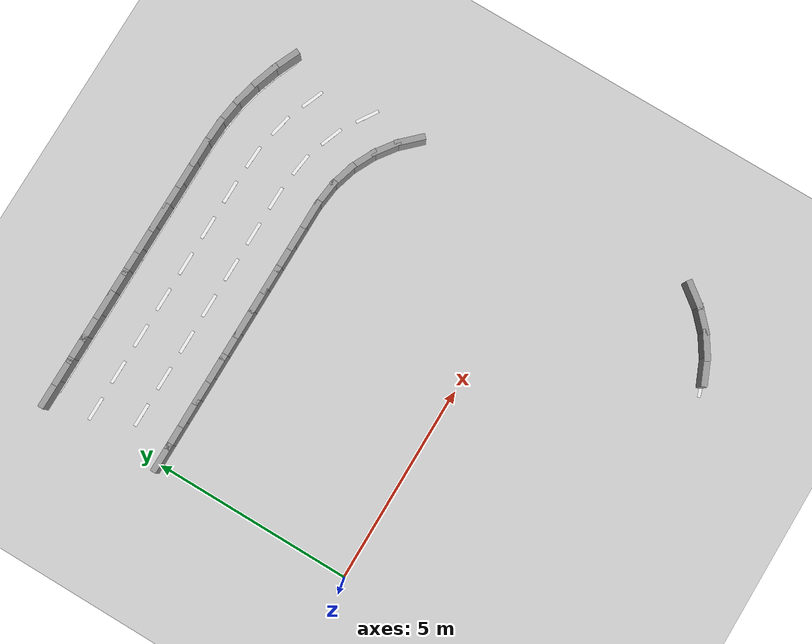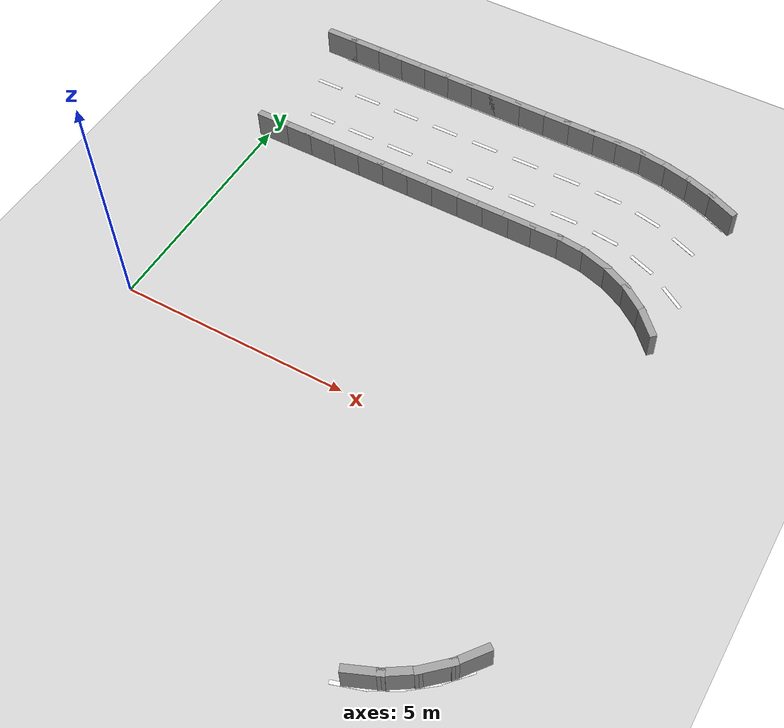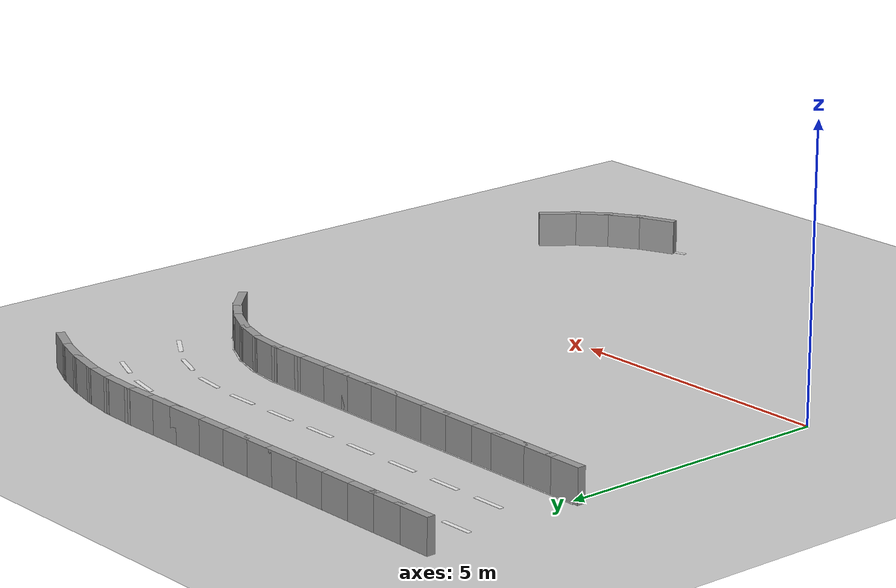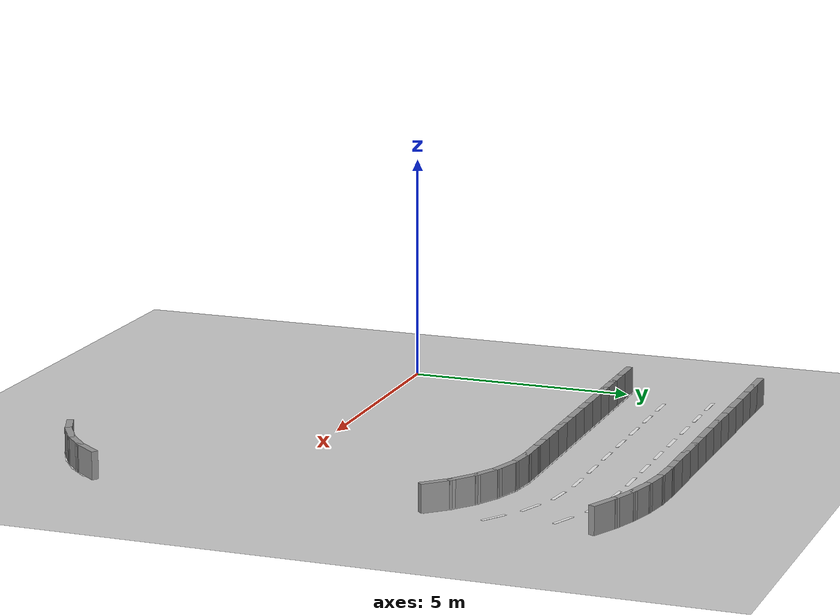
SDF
<sdf version="1.7">
 <world name="default">
  <model name="ground_plane">
   <static>1</static>
   <link name="link">
    <collision name="collision">
     <geometry><plane><normal>0 0 1</normal><size>100 100</size></plane></geometry>
     <surface><friction><ode><mu>100</mu><mu2>50</mu2></ode></friction></surface>
    </collision>
    <visual name="visual">
     <cast_shadows>0</cast_shadows>
     <geometry><plane><normal>0 0 1</normal><size>100 100</size></plane></geometry>
     <material>
      <script><uri>file://media/materials/scripts/gazebo.material</uri><name>Gazebo/Grey</name></script>
     </material>
    </visual>
   </link>
  </model>
  <model name="superspeedway">
   <link name="Wall_4">
    <collision name="Wall_4_Collision">
     <geometry><box><size>0.7493 0.1500 0.6000</size></box></geometry>
     <pose>0 0 0.3000 0 -0 0</pose>
    </collision>
    <visual name="Wall_4_Visual">
     <pose>0 0 0.3000 0 -0 0</pose>
     <geometry><box><size>0.7493 0.1500 0.6000</size></box></geometry>
     <material>
      <script><uri>file://media/materials/scripts/gazebo.material</uri><name>Gazebo/Grey</name></script>
      <ambient>1 1 1 1</ambient>
     </material>
    </visual>
    <pose>9.5000 3.9311 0 0 -0 2.34222</pose>
   </link>
   <link name="Wall_5">
    <collision name="Wall_5_Collision">
     <geometry><box><size>0.7493 0.1500 0.6000</size></box></geometry>
     <pose>0 0 0.3000 0 -0 0</pose>
    </collision>
    <visual name="Wall_5_Visual">
     <pose>0 0 0.3000 0 -0 0</pose>
     <geometry><box><size>0.7493 0.1500 0.6000</size></box></geometry>
     <material>
      <script><uri>file://media/materials/scripts/gazebo.material</uri><name>Gazebo/Grey</name></script>
      <ambient>1 1 1 1</ambient>
     </material>
    </visual>
    <pose>9.0486 4.3219 0 0 -0 2.51365</pose>
   </link>
   <link name="Wall_6">
    <collision name="Wall_6_Collision">
     <geometry><box><size>0.7493 0.1500 0.6000</size></box></geometry>
     <pose>0 0 0.3000 0 -0 0</pose>
    </collision>
    <visual name="Wall_6_Visual">
     <pose>0 0 0.3000 0 -0 0</pose>
     <geometry><box><size>0.7493 0.1500 0.6000</size></box></geometry>
     <material>
      <script><uri>file://media/materials/scripts/gazebo.material</uri><name>Gazebo/Grey</name></script>
      <ambient>1 1 1 1</ambient>
     </material>
    </visual>
    <pose>8.5372 4.6300 0 0 -0 2.68508</pose>
   </link>
   <link name="Wall_7">
    <collision name="Wall_7_Collision">
     <geometry><box><size>0.7493 0.1500 0.6000</size></box></geometry>
     <pose>0 0 0.3000 0 -0 0</pose>
    </collision>
    <visual name="Wall_7_Visual">
     <pose>0 0 0.3000 0 -0 0</pose>
     <geometry><box><size>0.7493 0.1500 0.6000</size></box></geometry>
     <material>
      <script><uri>file://media/materials/scripts/gazebo.material</uri><name>Gazebo/Grey</name></script>
      <ambient>1 1 1 1</ambient>
     </material>
    </visual>
    <pose>7.9807 4.8464 0 0 -0 2.85650</pose>
   </link>
   <link name="Wall_8">
    <collision name="Wall_8_Collision">
     <geometry><box><size>0.7493 0.1500 0.6000</size></box></geometry>
     <pose>0 0 0.3000 0 -0 0</pose>
    </collision>
    <visual name="Wall_8_Visual">
     <pose>0 0 0.3000 0 -0 0</pose>
     <geometry><box><size>0.7493 0.1500 0.6000</size></box></geometry>
     <material>
      <script><uri>file://media/materials/scripts/gazebo.material</uri><name>Gazebo/Grey</name></script>
      <ambient>1 1 1 1</ambient>
     </material>
    </visual>
    <pose>7.3955 4.9646 0 0 -0 3.02793</pose>
   </link>
   <link name="Wall_9">
    <collision name="Wall_9_Collision">
     <geometry><box><size>0.7500 0.1500 0.6000</size></box></geometry>
     <pose>0 0 0.3000 0 -0 0</pose>
    </collision>
    <visual name="Wall_9_Visual">
     <pose>0 0 0.3000 0 -0 0</pose>
     <geometry><box><size>0.7500 0.1500 0.6000</size></box></geometry>
     <material>
      <script><uri>file://media/materials/scripts/gazebo.material</uri><name>Gazebo/Grey</name></script>
      <ambient>1 1 1 1</ambient>
     </material>
    </visual>
    <pose>6.7978 4.9993 0 0 -0 3.13931</pose>
   </link>
   <link name="Wall_10">
    <collision name="Wall_10_Collision">
     <geometry><box><size>0.7500 0.1500 0.6000</size></box></geometry>
     <pose>0 0 0.3000 0 -0 0</pose>
    </collision>
    <visual name="Wall_10_Visual">
     <pose>0 0 0.3000 0 -0 0</pose>
     <geometry><box><size>0.7500 0.1500 0.6000</size></box></geometry>
     <material>
      <script><uri>file://media/materials/scripts/gazebo.material</uri><name>Gazebo/Grey</name></script>
      <ambient>1 1 1 1</ambient>
     </material>
    </visual>
    <pose>6.1978 5.0000 0 0 -0 3.14159</pose>
   </link>
   <link name="Wall_11">
    <collision name="Wall_11_Collision">
     <geometry><box><size>0.7500 0.1500 0.6000</size></box></geometry>
     <pose>0 0 0.3000 0 -0 0</pose>
    </collision>
    <visual name="Wall_11_Visual">
     <pose>0 0 0.3000 0 -0 0</pose>
     <geometry><box><size>0.7500 0.1500 0.6000</size></box></geometry>
     <material>
      <script><uri>file://media/materials/scripts/gazebo.material</uri><name>Gazebo/Grey</name></script>
      <ambient>1 1 1 1</ambient>
     </material>
    </visual>
    <pose>5.5978 5.0000 0 0 -0 3.14159</pose>
   </link>
   <link name="Wall_12">
    <collision name="Wall_12_Collision">
     <geometry><box><size>0.7500 0.1500 0.6000</size></box></geometry>
     <pose>0 0 0.3000 0 -0 0</pose>
    </collision>
    <visual name="Wall_12_Visual">
     <pose>0 0 0.3000 0 -0 0</pose>
     <geometry><box><size>0.7500 0.1500 0.6000</size></box></geometry>
     <material>
      <script><uri>file://media/materials/scripts/gazebo.material</uri><name>Gazebo/Grey</name></script>
      <ambient>1 1 1 1</ambient>
     </material>
    </visual>
    <pose>4.9978 5.0000 0 0 -0 3.14159</pose>
   </link>
   <link name="Wall_13">
    <collision name="Wall_13_Collision">
     <geometry><box><size>0.7500 0.1500 0.6000</size></box></geometry>
     <pose>0 0 0.3000 0 -0 0</pose>
    </collision>
    <visual name="Wall_13_Visual">
     <pose>0 0 0.3000 0 -0 0</pose>
     <geometry><box><size>0.7500 0.1500 0.6000</size></box></geometry>
     <material>
      <script><uri>file://media/materials/scripts/gazebo.material</uri><name>Gazebo/Grey</name></script>
      <ambient>1 1 1 1</ambient>
     </material>
    </visual>
    <pose>4.3978 5.0000 0 0 -0 3.14159</pose>
   </link>
   <link name="Wall_14">
    <collision name="Wall_14_Collision">
     <geometry><box><size>0.7500 0.1500 0.6000</size></box></geometry>
     <pose>0 0 0.3000 0 -0 0</pose>
    </collision>
    <visual name="Wall_14_Visual">
     <pose>0 0 0.3000 0 -0 0</pose>
     <geometry><box><size>0.7500 0.1500 0.6000</size></box></geometry>
     <material>
      <script><uri>file://media/materials/scripts/gazebo.material</uri><name>Gazebo/Grey</name></script>
      <ambient>1 1 1 1</ambient>
     </material>
    </visual>
    <pose>3.7978 5.0000 0 0 -0 3.14159</pose>
   </link>
   <link name="Wall_15">
    <collision name="Wall_15_Collision">
     <geometry><box><size>0.7500 0.1500 0.6000</size></box></geometry>
     <pose>0 0 0.3000 0 -0 0</pose>
    </collision>
    <visual name="Wall_15_Visual">
     <pose>0 0 0.3000 0 -0 0</pose>
     <geometry><box><size>0.7500 0.1500 0.6000</size></box></geometry>
     <material>
      <script><uri>file://media/materials/scripts/gazebo.material</uri><name>Gazebo/Grey</name></script>
      <ambient>1 1 1 1</ambient>
     </material>
    </visual>
    <pose>3.1978 5.0000 0 0 -0 3.14159</pose>
   </link>
   <link name="Wall_16">
    <collision name="Wall_16_Collision">
     <geometry><box><size>0.7500 0.1500 0.6000</size></box></geometry>
     <pose>0 0 0.3000 0 -0 0</pose>
    </collision>
    <visual name="Wall_16_Visual">
     <pose>0 0 0.3000 0 -0 0</pose>
     <geometry><box><size>0.7500 0.1500 0.6000</size></box></geometry>
     <material>
      <script><uri>file://media/materials/scripts/gazebo.material</uri><name>Gazebo/Grey</name></script>
      <ambient>1 1 1 1</ambient>
     </material>
    </visual>
    <pose>2.5978 5.0000 0 0 -0 3.14159</pose>
   </link>
   <link name="Wall_17">
    <collision name="Wall_17_Collision">
     <geometry><box><size>0.7500 0.1500 0.6000</size></box></geometry>
     <pose>0 0 0.3000 0 -0 0</pose>
    </collision>
    <visual name="Wall_17_Visual">
     <pose>0 0 0.3000 0 -0 0</pose>
     <geometry><box><size>0.7500 0.1500 0.6000</size></box></geometry>
     <material>
      <script><uri>file://media/materials/scripts/gazebo.material</uri><name>Gazebo/Grey</name></script>
      <ambient>1 1 1 1</ambient>
     </material>
    </visual>
    <pose>1.9978 5.0000 0 0 -0 3.14159</pose>
   </link>
   <link name="Wall_18">
    <collision name="Wall_18_Collision">
     <geometry><box><size>0.7500 0.1500 0.6000</size></box></geometry>
     <pose>0 0 0.3000 0 -0 0</pose>
    </collision>
    <visual name="Wall_18_Visual">
     <pose>0 0 0.3000 0 -0 0</pose>
     <geometry><box><size>0.7500 0.1500 0.6000</size></box></geometry>
     <material>
      <script><uri>file://media/materials/scripts/gazebo.material</uri><name>Gazebo/Grey</name></script>
      <ambient>1 1 1 1</ambient>
     </material>
    </visual>
    <pose>1.3978 5.0000 0 0 -0 3.14159</pose>
   </link>
   <link name="Wall_19">
    <collision name="Wall_19_Collision">
     <geometry><box><size>0.7500 0.1500 0.6000</size></box></geometry>
     <pose>0 0 0.3000 0 -0 0</pose>
    </collision>
    <visual name="Wall_19_Visual">
     <pose>0 0 0.3000 0 -0 0</pose>
     <geometry><box><size>0.7500 0.1500 0.6000</size></box></geometry>
     <material>
      <script><uri>file://media/materials/scripts/gazebo.material</uri><name>Gazebo/Grey</name></script>
      <ambient>1 1 1 1</ambient>
     </material>
    </visual>
    <pose>0.7978 5.0000 0 0 -0 3.14159</pose>
   </link>
   <link name="Wall_20">
    <collision name="Wall_20_Collision">
     <geometry><box><size>0.7500 0.1500 0.6000</size></box></geometry>
     <pose>0 0 0.3000 0 -0 0</pose>
    </collision>
    <visual name="Wall_20_Visual">
     <pose>0 0 0.3000 0 -0 0</pose>
     <geometry><box><size>0.7500 0.1500 0.6000</size></box></geometry>
     <material>
      <script><uri>file://media/materials/scripts/gazebo.material</uri><name>Gazebo/Grey</name></script>
      <ambient>1 1 1 1</ambient>
     </material>
    </visual>
    <pose>0.1978 5.0000 0 0 -0 3.14159</pose>
   </link>
   <link name="Wall_81">
    <collision name="Wall_81_Collision">
     <geometry><box><size>0.7493 0.1500 0.6000</size></box></geometry>
     <pose>0 0 0.3000 0 -0 0</pose>
    </collision>
    <visual name="Wall_81_Visual">
     <pose>0 0 0.3000 0 -0 0</pose>
     <geometry><box><size>0.7493 0.1500 0.6000</size></box></geometry>
     <material>
      <script><uri>file://media/materials/scripts/gazebo.material</uri><name>Gazebo/Grey</name></script>
      <ambient>1 1 1 1</ambient>
     </material>
    </visual>
    <pose>8.3640 -4.7093 0 0 -0 0.40190</pose>
   </link>
   <link name="Wall_82">
    <collision name="Wall_82_Collision">
     <geometry><box><size>0.7493 0.1500 0.6000</size></box></geometry>
     <pose>0 0 0.3000 0 -0 0</pose>
    </collision>
    <visual name="Wall_82_Visual">
     <pose>0 0 0.3000 0 -0 0</pose>
     <geometry><box><size>0.7493 0.1500 0.6000</size></box></geometry>
     <material>
      <script><uri>file://media/materials/scripts/gazebo.material</uri><name>Gazebo/Grey</name></script>
      <ambient>1 1 1 1</ambient>
     </material>
    </visual>
    <pose>8.8915 -4.4296 0 0 -0 0.57332</pose>
   </link>
   <link name="Wall_83">
    <collision name="Wall_83_Collision">
     <geometry><box><size>0.7493 0.1500 0.6000</size></box></geometry>
     <pose>0 0 0.3000 0 -0 0</pose>
    </collision>
    <visual name="Wall_83_Visual">
     <pose>0 0 0.3000 0 -0 0</pose>
     <geometry><box><size>0.7493 0.1500 0.6000</size></box></geometry>
     <material>
      <script><uri>file://media/materials/scripts/gazebo.material</uri><name>Gazebo/Grey</name></script>
      <ambient>1 1 1 1</ambient>
     </material>
    </visual>
    <pose>9.3635 -4.0639 0 0 -0 0.74475</pose>
   </link>
   <link name="Wall_84">
    <collision name="Wall_84_Collision">
     <geometry><box><size>0.7493 0.1500 0.6000</size></box></geometry>
     <pose>0 0 0.3000 0 -0 0</pose>
    </collision>
    <visual name="Wall_84_Visual">
     <pose>0 0 0.3000 0 -0 0</pose>
     <geometry><box><size>0.7493 0.1500 0.6000</size></box></geometry>
     <material>
      <script><uri>file://media/materials/scripts/gazebo.material</uri><name>Gazebo/Grey</name></script>
      <ambient>1 1 1 1</ambient>
     </material>
    </visual>
    <pose>9.7663 -3.6232 0 0 -0 0.91618</pose>
   </link>
   <link name="Wall_105">
    <collision name="Wall_105_Collision">
     <geometry><box><size>0.7498 0.1500 0.6000</size></box></geometry>
     <pose>0 0 0.3000 0 -0 0</pose>
    </collision>
    <visual name="Wall_105_Visual">
     <pose>0 0 0.3000 0 -0 0</pose>
     <geometry><box><size>0.7498 0.1500 0.6000</size></box></geometry>
     <material>
      <script><uri>file://media/materials/scripts/gazebo.material</uri><name>Gazebo/Grey</name></script>
      <ambient>1 1 1 1</ambient>
     </material>
    </visual>
    <pose>9.6295 7.4368 0 0 -0 2.72466</pose>
   </link>
   <link name="Wall_106">
    <collision name="Wall_106_Collision">
     <geometry><box><size>0.7498 0.1500 0.6000</size></box></geometry>
     <pose>0 0 0.3000 0 -0 0</pose>
    </collision>
    <visual name="Wall_106_Visual">
     <pose>0 0 0.3000 0 -0 0</pose>
     <geometry><box><size>0.7498 0.1500 0.6000</size></box></geometry>
     <material>
      <script><uri>file://media/materials/scripts/gazebo.material</uri><name>Gazebo/Grey</name></script>
      <ambient>1 1 1 1</ambient>
     </material>
    </visual>
    <pose>9.0711 7.6539 0 0 -0 2.81694</pose>
   </link>
   <link name="Wall_107">
    <collision name="Wall_107_Collision">
     <geometry><box><size>0.7498 0.1500 0.6000</size></box></geometry>
     <pose>0 0 0.3000 0 -0 0</pose>
    </collision>
    <visual name="Wall_107_Visual">
     <pose>0 0 0.3000 0 -0 0</pose>
     <geometry><box><size>0.7498 0.1500 0.6000</size></box></geometry>
     <material>
      <script><uri>file://media/materials/scripts/gazebo.material</uri><name>Gazebo/Grey</name></script>
      <ambient>1 1 1 1</ambient>
     </material>
    </visual>
    <pose>8.4950 7.8186 0 0 -0 2.90928</pose>
   </link>
   <link name="Wall_108">
    <collision name="Wall_108_Collision">
     <geometry><box><size>0.7498 0.1500 0.6000</size></box></geometry>
     <pose>0 0 0.3000 0 -0 0</pose>
    </collision>
    <visual name="Wall_108_Visual">
     <pose>0 0 0.3000 0 -0 0</pose>
     <geometry><box><size>0.7498 0.1500 0.6000</size></box></geometry>
     <material>
      <script><uri>file://media/materials/scripts/gazebo.material</uri><name>Gazebo/Grey</name></script>
      <ambient>1 1 1 1</ambient>
     </material>
    </visual>
    <pose>7.9062 7.9295 0 0 -0 3.00156</pose>
   </link>
   <link name="Wall_109">
    <collision name="Wall_109_Collision">
     <geometry><box><size>0.7498 0.1500 0.6000</size></box></geometry>
     <pose>0 0 0.3000 0 -0 0</pose>
    </collision>
    <visual name="Wall_109_Visual">
     <pose>0 0 0.3000 0 -0 0</pose>
     <geometry><box><size>0.7498 0.1500 0.6000</size></box></geometry>
     <material>
      <script><uri>file://media/materials/scripts/gazebo.material</uri><name>Gazebo/Grey</name></script>
      <ambient>1 1 1 1</ambient>
     </material>
    </visual>
    <pose>7.3097 7.9857 0 0 -0 3.09389</pose>
   </link>
   <link name="Wall_110">
    <collision name="Wall_110_Collision">
     <geometry><box><size>0.7500 0.1500 0.6000</size></box></geometry>
     <pose>0 0 0.3000 0 -0 0</pose>
    </collision>
    <visual name="Wall_110_Visual">
     <pose>0 0 0.3000 0 -0 0</pose>
     <geometry><box><size>0.7500 0.1500 0.6000</size></box></geometry>
     <material>
      <script><uri>file://media/materials/scripts/gazebo.material</uri><name>Gazebo/Grey</name></script>
      <ambient>1 1 1 1</ambient>
     </material>
    </visual>
    <pose>6.7101 8.0000 0 0 -0 3.14155</pose>
   </link>
   <link name="Wall_111">
    <collision name="Wall_111_Collision">
     <geometry><box><size>0.7500 0.1500 0.6000</size></box></geometry>
     <pose>0 0 0.3000 0 -0 0</pose>
    </collision>
    <visual name="Wall_111_Visual">
     <pose>0 0 0.3000 0 -0 0</pose>
     <geometry><box><size>0.7500 0.1500 0.6000</size></box></geometry>
     <material>
      <script><uri>file://media/materials/scripts/gazebo.material</uri><name>Gazebo/Grey</name></script>
      <ambient>1 1 1 1</ambient>
     </material>
    </visual>
    <pose>6.1101 8.0000 0 0 -0 3.14159</pose>
   </link>
   <link name="Wall_112">
    <collision name="Wall_112_Collision">
     <geometry><box><size>0.7500 0.1500 0.6000</size></box></geometry>
     <pose>0 0 0.3000 0 -0 0</pose>
    </collision>
    <visual name="Wall_112_Visual">
     <pose>0 0 0.3000 0 -0 0</pose>
     <geometry><box><size>0.7500 0.1500 0.6000</size></box></geometry>
     <material>
      <script><uri>file://media/materials/scripts/gazebo.material</uri><name>Gazebo/Grey</name></script>
      <ambient>1 1 1 1</ambient>
     </material>
    </visual>
    <pose>5.5101 8.0000 0 0 -0 3.14159</pose>
   </link>
   <link name="Wall_113">
    <collision name="Wall_113_Collision">
     <geometry><box><size>0.7500 0.1500 0.6000</size></box></geometry>
     <pose>0 0 0.3000 0 -0 0</pose>
    </collision>
    <visual name="Wall_113_Visual">
     <pose>0 0 0.3000 0 -0 0</pose>
     <geometry><box><size>0.7500 0.1500 0.6000</size></box></geometry>
     <material>
      <script><uri>file://media/materials/scripts/gazebo.material</uri><name>Gazebo/Grey</name></script>
      <ambient>1 1 1 1</ambient>
     </material>
    </visual>
    <pose>4.9101 8.0000 0 0 -0 3.14159</pose>
   </link>
   <link name="Wall_114">
    <collision name="Wall_114_Collision">
     <geometry><box><size>0.7500 0.1500 0.6000</size></box></geometry>
     <pose>0 0 0.3000 0 -0 0</pose>
    </collision>
    <visual name="Wall_114_Visual">
     <pose>0 0 0.3000 0 -0 0</pose>
     <geometry><box><size>0.7500 0.1500 0.6000</size></box></geometry>
     <material>
      <script><uri>file://media/materials/scripts/gazebo.material</uri><name>Gazebo/Grey</name></script>
      <ambient>1 1 1 1</ambient>
     </material>
    </visual>
    <pose>4.3101 8.0000 0 0 -0 3.14159</pose>
   </link>
   <link name="Wall_115">
    <collision name="Wall_115_Collision">
     <geometry><box><size>0.7500 0.1500 0.6000</size></box></geometry>
     <pose>0 0 0.3000 0 -0 0</pose>
    </collision>
    <visual name="Wall_115_Visual">
     <pose>0 0 0.3000 0 -0 0</pose>
     <geometry><box><size>0.7500 0.1500 0.6000</size></box></geometry>
     <material>
      <script><uri>file://media/materials/scripts/gazebo.material</uri><name>Gazebo/Grey</name></script>
      <ambient>1 1 1 1</ambient>
     </material>
    </visual>
    <pose>3.7101 8.0000 0 0 -0 3.14159</pose>
   </link>
   <link name="Wall_116">
    <collision name="Wall_116_Collision">
     <geometry><box><size>0.7500 0.1500 0.6000</size></box></geometry>
     <pose>0 0 0.3000 0 -0 0</pose>
    </collision>
    <visual name="Wall_116_Visual">
     <pose>0 0 0.3000 0 -0 0</pose>
     <geometry><box><size>0.7500 0.1500 0.6000</size></box></geometry>
     <material>
      <script><uri>file://media/materials/scripts/gazebo.material</uri><name>Gazebo/Grey</name></script>
      <ambient>1 1 1 1</ambient>
     </material>
    </visual>
    <pose>3.1101 8.0000 0 0 -0 3.14159</pose>
   </link>
   <link name="Wall_117">
    <collision name="Wall_117_Collision">
     <geometry><box><size>0.7500 0.1500 0.6000</size></box></geometry>
     <pose>0 0 0.3000 0 -0 0</pose>
    </collision>
    <visual name="Wall_117_Visual">
     <pose>0 0 0.3000 0 -0 0</pose>
     <geometry><box><size>0.7500 0.1500 0.6000</size></box></geometry>
     <material>
      <script><uri>file://media/materials/scripts/gazebo.material</uri><name>Gazebo/Grey</name></script>
      <ambient>1 1 1 1</ambient>
     </material>
    </visual>
    <pose>2.5101 8.0000 0 0 -0 3.14159</pose>
   </link>
   <link name="Wall_118">
    <collision name="Wall_118_Collision">
     <geometry><box><size>0.7500 0.1500 0.6000</size></box></geometry>
     <pose>0 0 0.3000 0 -0 0</pose>
    </collision>
    <visual name="Wall_118_Visual">
     <pose>0 0 0.3000 0 -0 0</pose>
     <geometry><box><size>0.7500 0.1500 0.6000</size></box></geometry>
     <material>
      <script><uri>file://media/materials/scripts/gazebo.material</uri><name>Gazebo/Grey</name></script>
      <ambient>1 1 1 1</ambient>
     </material>
    </visual>
    <pose>1.9101 8.0000 0 0 -0 3.14159</pose>
   </link>
   <link name="Wall_119">
    <collision name="Wall_119_Collision">
     <geometry><box><size>0.7500 0.1500 0.6000</size></box></geometry>
     <pose>0 0 0.3000 0 -0 0</pose>
    </collision>
    <visual name="Wall_119_Visual">
     <pose>0 0 0.3000 0 -0 0</pose>
     <geometry><box><size>0.7500 0.1500 0.6000</size></box></geometry>
     <material>
      <script><uri>file://media/materials/scripts/gazebo.material</uri><name>Gazebo/Grey</name></script>
      <ambient>1 1 1 1</ambient>
     </material>
    </visual>
    <pose>1.3101 8.0000 0 0 -0 3.14159</pose>
   </link>
   <link name="Wall_120">
    <collision name="Wall_120_Collision">
     <geometry><box><size>0.7500 0.1500 0.6000</size></box></geometry>
     <pose>0 0 0.3000 0 -0 0</pose>
    </collision>
    <visual name="Wall_120_Visual">
     <pose>0 0 0.3000 0 -0 0</pose>
     <geometry><box><size>0.7500 0.1500 0.6000</size></box></geometry>
     <material>
      <script><uri>file://media/materials/scripts/gazebo.material</uri><name>Gazebo/Grey</name></script>
      <ambient>1 1 1 1</ambient>
     </material>
    </visual>
    <pose>0.7101 8.0000 0 0 -0 3.14159</pose>
   </link>
   <link name="Wall_121">
    <collision name="Wall_121_Collision">
     <geometry><box><size>0.7500 0.1500 0.6000</size></box></geometry>
     <pose>0 0 0.3000 0 -0 0</pose>
    </collision>
    <visual name="Wall_121_Visual">
     <pose>0 0 0.3000 0 -0 0</pose>
     <geometry><box><size>0.7500 0.1500 0.6000</size></box></geometry>
     <material>
      <script><uri>file://media/materials/scripts/gazebo.material</uri><name>Gazebo/Grey</name></script>
      <ambient>1 1 1 1</ambient>
     </material>
    </visual>
    <pose>0.1101 8.0000 0 0 -0 3.14159</pose>
   </link>
   <link name="Paint_4">
    <visual name="Paint_4_Visual">
     <pose>0 0 0.0020 0 -0 0</pose>
     <geometry><box><size>0.6799 0.0800 0.0040</size></box></geometry>
     <material>
      <script><uri>file://media/materials/scripts/gazebo.material</uri><name>Gazebo/White</name></script>
      <ambient>1 1 1 1</ambient>
     </material>
    </visual>
    <pose>9.5452 3.9709 0 0 -0 2.33021</pose>
   </link>
   <link name="Paint_5">
    <visual name="Paint_5_Visual">
     <pose>0 0 0.0020 0 -0 0</pose>
     <geometry><box><size>0.6799 0.0800 0.0040</size></box></geometry>
     <material>
      <script><uri>file://media/materials/scripts/gazebo.material</uri><name>Gazebo/White</name></script>
      <ambient>1 1 1 1</ambient>
     </material>
    </visual>
    <pose>9.0940 4.3632 0 0 -0 2.49895</pose>
   </link>
   <link name="Paint_6">
    <visual name="Paint_6_Visual">
     <pose>0 0 0.0020 0 -0 0</pose>
     <geometry><box><size>0.6799 0.0800 0.0040</size></box></geometry>
     <material>
      <script><uri>file://media/materials/scripts/gazebo.material</uri><name>Gazebo/White</name></script>
      <ambient>1 1 1 1</ambient>
     </material>
    </visual>
    <pose>8.5834 4.6741 0 0 -0 2.66768</pose>
   </link>
   <link name="Paint_7">
    <visual name="Paint_7_Visual">
     <pose>0 0 0.0020 0 -0 0</pose>
     <geometry><box><size>0.6799 0.0800 0.0040</size></box></geometry>
     <material>
      <script><uri>file://media/materials/scripts/gazebo.material</uri><name>Gazebo/White</name></script>
      <ambient>1 1 1 1</ambient>
     </material>
    </visual>
    <pose>8.0279 4.8949 0 0 -0 2.83643</pose>
   </link>
   <link name="Paint_8">
    <visual name="Paint_8_Visual">
     <pose>0 0 0.0020 0 -0 0</pose>
     <geometry><box><size>0.6799 0.0800 0.0040</size></box></geometry>
     <material>
      <script><uri>file://media/materials/scripts/gazebo.material</uri><name>Gazebo/White</name></script>
      <ambient>1 1 1 1</ambient>
     </material>
    </visual>
    <pose>7.4431 5.0194 0 0 -0 3.00474</pose>
   </link>
   <link name="Paint_9">
    <visual name="Paint_9_Visual">
     <pose>0 0 0.0020 0 -0 0</pose>
     <geometry><box><size>0.6800 0.0800 0.0040</size></box></geometry>
     <material>
      <script><uri>file://media/materials/scripts/gazebo.material</uri><name>Gazebo/White</name></script>
      <ambient>1 1 1 1</ambient>
     </material>
    </visual>
    <pose>6.8456 5.0578 0 0 -0 3.13305</pose>
   </link>
   <link name="Paint_10">
    <visual name="Paint_10_Visual">
     <pose>0 0 0.0020 0 -0 0</pose>
     <geometry><box><size>0.6800 0.0800 0.0040</size></box></geometry>
     <material>
      <script><uri>file://media/materials/scripts/gazebo.material</uri><name>Gazebo/White</name></script>
      <ambient>1 1 1 1</ambient>
     </material>
    </visual>
    <pose>6.2456 5.0600 0 0 -0 3.14159</pose>
   </link>
   <link name="Paint_11">
    <visual name="Paint_11_Visual">
     <pose>0 0 0.0020 0 -0 0</pose>
     <geometry><box><size>0.6800 0.0800 0.0040</size></box></geometry>
     <material>
      <script><uri>file://media/materials/scripts/gazebo.material</uri><name>Gazebo/White</name></script>
      <ambient>1 1 1 1</ambient>
     </material>
    </visual>
    <pose>5.6456 5.0600 0 0 -0 3.14159</pose>
   </link>
   <link name="Paint_12">
    <visual name="Paint_12_Visual">
     <pose>0 0 0.0020 0 -0 0</pose>
     <geometry><box><size>0.6800 0.0800 0.0040</size></box></geometry>
     <material>
      <script><uri>file://media/materials/scripts/gazebo.material</uri><name>Gazebo/White</name></script>
      <ambient>1 1 1 1</ambient>
     </material>
    </visual>
    <pose>5.0456 5.0600 0 0 -0 3.14159</pose>
   </link>
   <link name="Paint_13">
    <visual name="Paint_13_Visual">
     <pose>0 0 0.0020 0 -0 0</pose>
     <geometry><box><size>0.6800 0.0800 0.0040</size></box></geometry>
     <material>
      <script><uri>file://media/materials/scripts/gazebo.material</uri><name>Gazebo/White</name></script>
      <ambient>1 1 1 1</ambient>
     </material>
    </visual>
    <pose>4.4456 5.0600 0 0 -0 3.14159</pose>
   </link>
   <link name="Paint_14">
    <visual name="Paint_14_Visual">
     <pose>0 0 0.0020 0 -0 0</pose>
     <geometry><box><size>0.6800 0.0800 0.0040</size></box></geometry>
     <material>
      <script><uri>file://media/materials/scripts/gazebo.material</uri><name>Gazebo/White</name></script>
      <ambient>1 1 1 1</ambient>
     </material>
    </visual>
    <pose>3.8456 5.0600 0 0 -0 3.14159</pose>
   </link>
   <link name="Paint_15">
    <visual name="Paint_15_Visual">
     <pose>0 0 0.0020 0 -0 0</pose>
     <geometry><box><size>0.6800 0.0800 0.0040</size></box></geometry>
     <material>
      <script><uri>file://media/materials/scripts/gazebo.material</uri><name>Gazebo/White</name></script>
      <ambient>1 1 1 1</ambient>
     </material>
    </visual>
    <pose>3.2456 5.0600 0 0 -0 3.14159</pose>
   </link>
   <link name="Paint_16">
    <visual name="Paint_16_Visual">
     <pose>0 0 0.0020 0 -0 0</pose>
     <geometry><box><size>0.6800 0.0800 0.0040</size></box></geometry>
     <material>
      <script><uri>file://media/materials/scripts/gazebo.material</uri><name>Gazebo/White</name></script>
      <ambient>1 1 1 1</ambient>
     </material>
    </visual>
    <pose>2.6456 5.0600 0 0 -0 3.14159</pose>
   </link>
   <link name="Paint_17">
    <visual name="Paint_17_Visual">
     <pose>0 0 0.0020 0 -0 0</pose>
     <geometry><box><size>0.6800 0.0800 0.0040</size></box></geometry>
     <material>
      <script><uri>file://media/materials/scripts/gazebo.material</uri><name>Gazebo/White</name></script>
      <ambient>1 1 1 1</ambient>
     </material>
    </visual>
    <pose>2.0456 5.0600 0 0 -0 3.14159</pose>
   </link>
   <link name="Paint_18">
    <visual name="Paint_18_Visual">
     <pose>0 0 0.0020 0 -0 0</pose>
     <geometry><box><size>0.6800 0.0800 0.0040</size></box></geometry>
     <material>
      <script><uri>file://media/materials/scripts/gazebo.material</uri><name>Gazebo/White</name></script>
      <ambient>1 1 1 1</ambient>
     </material>
    </visual>
    <pose>1.4456 5.0600 0 0 -0 3.14159</pose>
   </link>
   <link name="Paint_19">
    <visual name="Paint_19_Visual">
     <pose>0 0 0.0020 0 -0 0</pose>
     <geometry><box><size>0.6800 0.0800 0.0040</size></box></geometry>
     <material>
      <script><uri>file://media/materials/scripts/gazebo.material</uri><name>Gazebo/White</name></script>
      <ambient>1 1 1 1</ambient>
     </material>
    </visual>
    <pose>0.8456 5.0600 0 0 -0 3.14159</pose>
   </link>
   <link name="Paint_20">
    <visual name="Paint_20_Visual">
     <pose>0 0 0.0020 0 -0 0</pose>
     <geometry><box><size>0.6800 0.0800 0.0040</size></box></geometry>
     <material>
      <script><uri>file://media/materials/scripts/gazebo.material</uri><name>Gazebo/White</name></script>
      <ambient>1 1 1 1</ambient>
     </material>
    </visual>
    <pose>0.2456 5.0600 0 0 -0 3.14159</pose>
   </link>
   <link name="Paint_81">
    <visual name="Paint_81_Visual">
     <pose>0 0 0.0020 0 -0 0</pose>
     <geometry><box><size>0.6797 0.0800 0.0040</size></box></geometry>
     <material>
      <script><uri>file://media/materials/scripts/gazebo.material</uri><name>Gazebo/White</name></script>
      <ambient>1 1 1 1</ambient>
     </material>
    </visual>
    <pose>8.1582 -4.8514 0 0 -0 0.32154</pose>
   </link>
   <link name="Paint_82">
    <visual name="Paint_82_Visual">
     <pose>0 0 0.0020 0 -0 0</pose>
     <geometry><box><size>0.6797 0.0800 0.0040</size></box></geometry>
     <material>
      <script><uri>file://media/materials/scripts/gazebo.material</uri><name>Gazebo/White</name></script>
      <ambient>1 1 1 1</ambient>
     </material>
    </visual>
    <pose>8.7046 -4.6092 0 0 -0 0.49029</pose>
   </link>
   <link name="Paint_83">
    <visual name="Paint_83_Visual">
     <pose>0 0 0.0020 0 -0 0</pose>
     <geometry><box><size>0.6797 0.0800 0.0040</size></box></geometry>
     <material>
      <script><uri>file://media/materials/scripts/gazebo.material</uri><name>Gazebo/White</name></script>
      <ambient>1 1 1 1</ambient>
     </material>
    </visual>
    <pose>9.2025 -4.2788 0 0 -0 0.65902</pose>
   </link>
   <link name="Paint_84">
    <visual name="Paint_84_Visual">
     <pose>0 0 0.0020 0 -0 0</pose>
     <geometry><box><size>0.6797 0.0800 0.0040</size></box></geometry>
     <material>
      <script><uri>file://media/materials/scripts/gazebo.material</uri><name>Gazebo/White</name></script>
      <ambient>1 1 1 1</ambient>
     </material>
    </visual>
    <pose>9.6378 -3.8694 0 0 -0 0.82776</pose>
   </link>
   <link name="Paint_106">
    <visual name="Paint_106_Visual">
     <pose>0 0 0.0020 0 -0 0</pose>
     <geometry><box><size>0.6800 0.0800 0.0040</size></box></geometry>
     <material>
      <script><uri>file://media/materials/scripts/gazebo.material</uri><name>Gazebo/White</name></script>
      <ambient>1 1 1 1</ambient>
     </material>
    </visual>
    <pose>9.5025 7.4263 0 0 -0 2.73582</pose>
   </link>
   <link name="Paint_107">
    <visual name="Paint_107_Visual">
     <pose>0 0 0.0020 0 -0 0</pose>
     <geometry><box><size>0.6800 0.0800 0.0040</size></box></geometry>
     <material>
      <script><uri>file://media/materials/scripts/gazebo.material</uri><name>Gazebo/White</name></script>
      <ambient>1 1 1 1</ambient>
     </material>
    </visual>
    <pose>8.9401 7.6335 0 0 -0 2.82904</pose>
   </link>
   <link name="Paint_108">
    <visual name="Paint_108_Visual">
     <pose>0 0 0.0020 0 -0 0</pose>
     <geometry><box><size>0.6800 0.0800 0.0040</size></box></geometry>
     <material>
      <script><uri>file://media/materials/scripts/gazebo.material</uri><name>Gazebo/White</name></script>
      <ambient>1 1 1 1</ambient>
     </material>
    </visual>
    <pose>8.3608 7.7874 0 0 -0 2.92225</pose>
   </link>
   <link name="Paint_109">
    <visual name="Paint_109_Visual">
     <pose>0 0 0.0020 0 -0 0</pose>
     <geometry><box><size>0.6800 0.0800 0.0040</size></box></geometry>
     <material>
      <script><uri>file://media/materials/scripts/gazebo.material</uri><name>Gazebo/White</name></script>
      <ambient>1 1 1 1</ambient>
     </material>
    </visual>
    <pose>7.7698 7.8867 0 0 -0 3.01543</pose>
   </link>
   <link name="Paint_110">
    <visual name="Paint_110_Visual">
     <pose>0 0 0.0020 0 -0 0</pose>
     <geometry><box><size>0.6800 0.0800 0.0040</size></box></geometry>
     <material>
      <script><uri>file://media/materials/scripts/gazebo.material</uri><name>Gazebo/White</name></script>
      <ambient>1 1 1 1</ambient>
     </material>
    </visual>
    <pose>7.1721 7.9311 0 0 -0 3.10735</pose>
   </link>
   <link name="Paint_111">
    <visual name="Paint_111_Visual">
     <pose>0 0 0.0020 0 -0 0</pose>
     <geometry><box><size>0.6800 0.0800 0.0040</size></box></geometry>
     <material>
      <script><uri>file://media/materials/scripts/gazebo.material</uri><name>Gazebo/White</name></script>
      <ambient>1 1 1 1</ambient>
     </material>
    </visual>
    <pose>6.5722 7.9400 0 0 -0 3.14159</pose>
   </link>
   <link name="Paint_112">
    <visual name="Paint_112_Visual">
     <pose>0 0 0.0020 0 -0 0</pose>
     <geometry><box><size>0.6800 0.0800 0.0040</size></box></geometry>
     <material>
      <script><uri>file://media/materials/scripts/gazebo.material</uri><name>Gazebo/White</name></script>
      <ambient>1 1 1 1</ambient>
     </material>
    </visual>
    <pose>5.9722 7.9400 0 0 -0 3.14159</pose>
   </link>
   <link name="Paint_113">
    <visual name="Paint_113_Visual">
     <pose>0 0 0.0020 0 -0 0</pose>
     <geometry><box><size>0.6800 0.0800 0.0040</size></box></geometry>
     <material>
      <script><uri>file://media/materials/scripts/gazebo.material</uri><name>Gazebo/White</name></script>
      <ambient>1 1 1 1</ambient>
     </material>
    </visual>
    <pose>5.3722 7.9400 0 0 -0 3.14159</pose>
   </link>
   <link name="Paint_114">
    <visual name="Paint_114_Visual">
     <pose>0 0 0.0020 0 -0 0</pose>
     <geometry><box><size>0.6800 0.0800 0.0040</size></box></geometry>
     <material>
      <script><uri>file://media/materials/scripts/gazebo.material</uri><name>Gazebo/White</name></script>
      <ambient>1 1 1 1</ambient>
     </material>
    </visual>
    <pose>4.7722 7.9400 0 0 -0 3.14159</pose>
   </link>
   <link name="Paint_115">
    <visual name="Paint_115_Visual">
     <pose>0 0 0.0020 0 -0 0</pose>
     <geometry><box><size>0.6800 0.0800 0.0040</size></box></geometry>
     <material>
      <script><uri>file://media/materials/scripts/gazebo.material</uri><name>Gazebo/White</name></script>
      <ambient>1 1 1 1</ambient>
     </material>
    </visual>
    <pose>4.1722 7.9400 0 0 -0 3.14159</pose>
   </link>
   <link name="Paint_116">
    <visual name="Paint_116_Visual">
     <pose>0 0 0.0020 0 -0 0</pose>
     <geometry><box><size>0.6800 0.0800 0.0040</size></box></geometry>
     <material>
      <script><uri>file://media/materials/scripts/gazebo.material</uri><name>Gazebo/White</name></script>
      <ambient>1 1 1 1</ambient>
     </material>
    </visual>
    <pose>3.5722 7.9400 0 0 -0 3.14159</pose>
   </link>
   <link name="Paint_117">
    <visual name="Paint_117_Visual">
     <pose>0 0 0.0020 0 -0 0</pose>
     <geometry><box><size>0.6800 0.0800 0.0040</size></box></geometry>
     <material>
      <script><uri>file://media/materials/scripts/gazebo.material</uri><name>Gazebo/White</name></script>
      <ambient>1 1 1 1</ambient>
     </material>
    </visual>
    <pose>2.9722 7.9400 0 0 -0 3.14159</pose>
   </link>
   <link name="Paint_118">
    <visual name="Paint_118_Visual">
     <pose>0 0 0.0020 0 -0 0</pose>
     <geometry><box><size>0.6800 0.0800 0.0040</size></box></geometry>
     <material>
      <script><uri>file://media/materials/scripts/gazebo.material</uri><name>Gazebo/White</name></script>
      <ambient>1 1 1 1</ambient>
     </material>
    </visual>
    <pose>2.3722 7.9400 0 0 -0 3.14159</pose>
   </link>
   <link name="Paint_119">
    <visual name="Paint_119_Visual">
     <pose>0 0 0.0020 0 -0 0</pose>
     <geometry><box><size>0.6800 0.0800 0.0040</size></box></geometry>
     <material>
      <script><uri>file://media/materials/scripts/gazebo.material</uri><name>Gazebo/White</name></script>
      <ambient>1 1 1 1</ambient>
     </material>
    </visual>
    <pose>1.7722 7.9400 0 0 -0 3.14159</pose>
   </link>
   <link name="Paint_120">
    <visual name="Paint_120_Visual">
     <pose>0 0 0.0020 0 -0 0</pose>
     <geometry><box><size>0.6800 0.0800 0.0040</size></box></geometry>
     <material>
      <script><uri>file://media/materials/scripts/gazebo.material</uri><name>Gazebo/White</name></script>
      <ambient>1 1 1 1</ambient>
     </material>
    </visual>
    <pose>1.1722 7.9400 0 0 -0 3.14159</pose>
   </link>
   <link name="Paint_121">
    <visual name="Paint_121_Visual">
     <pose>0 0 0.0020 0 -0 0</pose>
     <geometry><box><size>0.6800 0.0800 0.0040</size></box></geometry>
     <material>
      <script><uri>file://media/materials/scripts/gazebo.material</uri><name>Gazebo/White</name></script>
      <ambient>1 1 1 1</ambient>
     </material>
    </visual>
    <pose>0.5722 7.9400 0 0 -0 3.14159</pose>
   </link>
   <link name="Paint_223">
    <visual name="Paint_223_Visual">
     <pose>0 0 0.0020 0 -0 0</pose>
     <geometry><box><size>0.6000 0.0800 0.0040</size></box></geometry>
     <material>
      <script><uri>file://media/materials/scripts/gazebo.material</uri><name>Gazebo/White</name></script>
      <ambient>1 1 1 1</ambient>
     </material>
    </visual>
    <pose>9.5757 5.1506 0 0 -0 2.57168</pose>
   </link>
   <link name="Paint_224">
    <visual name="Paint_224_Visual">
     <pose>0 0 0.0020 0 -0 0</pose>
     <geometry><box><size>0.6000 0.0800 0.0040</size></box></geometry>
     <material>
      <script><uri>file://media/materials/scripts/gazebo.material</uri><name>Gazebo/White</name></script>
      <ambient>1 1 1 1</ambient>
     </material>
    </visual>
    <pose>8.7082 5.6311 0 0 -0 2.78528</pose>
   </link>
   <link name="Paint_225">
    <visual name="Paint_225_Visual">
     <pose>0 0 0.0020 0 -0 0</pose>
     <geometry><box><size>0.6000 0.0800 0.0040</size></box></geometry>
     <material>
      <script><uri>file://media/materials/scripts/gazebo.material</uri><name>Gazebo/White</name></script>
      <ambient>1 1 1 1</ambient>
     </material>
    </visual>
    <pose>7.7563 5.9098 0 0 -0 3.02346</pose>
   </link>
   <link name="Paint_226">
    <visual name="Paint_226_Visual">
     <pose>0 0 0.0020 0 -0 0</pose>
     <geometry><box><size>0.6000 0.0800 0.0040</size></box></geometry>
     <material>
      <script><uri>file://media/materials/scripts/gazebo.material</uri><name>Gazebo/White</name></script>
      <ambient>1 1 1 1</ambient>
     </material>
    </visual>
    <pose>6.7632 5.9945 0 0 -0 3.13367</pose>
   </link>
   <link name="Paint_227">
    <visual name="Paint_227_Visual">
     <pose>0 0 0.0020 0 -0 0</pose>
     <geometry><box><size>0.6000 0.0800 0.0040</size></box></geometry>
     <material>
      <script><uri>file://media/materials/scripts/gazebo.material</uri><name>Gazebo/White</name></script>
      <ambient>1 1 1 1</ambient>
     </material>
    </visual>
    <pose>5.7633 6.0000 0 0 -0 3.14159</pose>
   </link>
   <link name="Paint_228">
    <visual name="Paint_228_Visual">
     <pose>0 0 0.0020 0 -0 0</pose>
     <geometry><box><size>0.6000 0.0800 0.0040</size></box></geometry>
     <material>
      <script><uri>file://media/materials/scripts/gazebo.material</uri><name>Gazebo/White</name></script>
      <ambient>1 1 1 1</ambient>
     </material>
    </visual>
    <pose>4.7633 6.0000 0 0 -0 3.14159</pose>
   </link>
   <link name="Paint_229">
    <visual name="Paint_229_Visual">
     <pose>0 0 0.0020 0 -0 0</pose>
     <geometry><box><size>0.6000 0.0800 0.0040</size></box></geometry>
     <material>
      <script><uri>file://media/materials/scripts/gazebo.material</uri><name>Gazebo/White</name></script>
      <ambient>1 1 1 1</ambient>
     </material>
    </visual>
    <pose>3.7633 6.0000 0 0 -0 3.14159</pose>
   </link>
   <link name="Paint_230">
    <visual name="Paint_230_Visual">
     <pose>0 0 0.0020 0 -0 0</pose>
     <geometry><box><size>0.6000 0.0800 0.0040</size></box></geometry>
     <material>
      <script><uri>file://media/materials/scripts/gazebo.material</uri><name>Gazebo/White</name></script>
      <ambient>1 1 1 1</ambient>
     </material>
    </visual>
    <pose>2.7633 6.0000 0 0 -0 3.14159</pose>
   </link>
   <link name="Paint_231">
    <visual name="Paint_231_Visual">
     <pose>0 0 0.0020 0 -0 0</pose>
     <geometry><box><size>0.6000 0.0800 0.0040</size></box></geometry>
     <material>
      <script><uri>file://media/materials/scripts/gazebo.material</uri><name>Gazebo/White</name></script>
      <ambient>1 1 1 1</ambient>
     </material>
    </visual>
    <pose>1.7633 6.0000 0 0 -0 3.14159</pose>
   </link>
   <link name="Paint_232">
    <visual name="Paint_232_Visual">
     <pose>0 0 0.0020 0 -0 0</pose>
     <geometry><box><size>0.6000 0.0800 0.0040</size></box></geometry>
     <material>
      <script><uri>file://media/materials/scripts/gazebo.material</uri><name>Gazebo/White</name></script>
      <ambient>1 1 1 1</ambient>
     </material>
    </visual>
    <pose>0.7633 6.0000 0 0 -0 3.14159</pose>
   </link>
   <link name="Paint_288">
    <visual name="Paint_288_Visual">
     <pose>0 0 0.0020 0 -0 0</pose>
     <geometry><box><size>0.6000 0.0800 0.0040</size></box></geometry>
     <material>
      <script><uri>file://media/materials/scripts/gazebo.material</uri><name>Gazebo/White</name></script>
      <ambient>1 1 1 1</ambient>
     </material>
    </visual>
    <pose>9.2581 6.4916 0 0 -0 2.76023</pose>
   </link>
   <link name="Paint_289">
    <visual name="Paint_289_Visual">
     <pose>0 0 0.0020 0 -0 0</pose>
     <geometry><box><size>0.6000 0.0800 0.0040</size></box></geometry>
     <material>
      <script><uri>file://media/materials/scripts/gazebo.material</uri><name>Gazebo/White</name></script>
      <ambient>1 1 1 1</ambient>
     </material>
    </visual>
    <pose>8.3160 6.8131 0 0 -0 2.93525</pose>
   </link>
   <link name="Paint_290">
    <visual name="Paint_290_Visual">
     <pose>0 0 0.0020 0 -0 0</pose>
     <geometry><box><size>0.6000 0.0800 0.0040</size></box></geometry>
     <material>
      <script><uri>file://media/materials/scripts/gazebo.material</uri><name>Gazebo/White</name></script>
      <ambient>1 1 1 1</ambient>
     </material>
    </visual>
    <pose>7.3335 6.9692 0 0 -0 3.09757</pose>
   </link>
   <link name="Paint_291">
    <visual name="Paint_291_Visual">
     <pose>0 0 0.0020 0 -0 0</pose>
     <geometry><box><size>0.6000 0.0800 0.0040</size></box></geometry>
     <material>
      <script><uri>file://media/materials/scripts/gazebo.material</uri><name>Gazebo/White</name></script>
      <ambient>1 1 1 1</ambient>
     </material>
    </visual>
    <pose>6.3351 7.0000 0 0 -0 3.14159</pose>
   </link>
   <link name="Paint_292">
    <visual name="Paint_292_Visual">
     <pose>0 0 0.0020 0 -0 0</pose>
     <geometry><box><size>0.6000 0.0800 0.0040</size></box></geometry>
     <material>
      <script><uri>file://media/materials/scripts/gazebo.material</uri><name>Gazebo/White</name></script>
      <ambient>1 1 1 1</ambient>
     </material>
    </visual>
    <pose>5.3351 7.0000 0 0 -0 3.14159</pose>
   </link>
   <link name="Paint_293">
    <visual name="Paint_293_Visual">
     <pose>0 0 0.0020 0 -0 0</pose>
     <geometry><box><size>0.6000 0.0800 0.0040</size></box></geometry>
     <material>
      <script><uri>file://media/materials/scripts/gazebo.material</uri><name>Gazebo/White</name></script>
      <ambient>1 1 1 1</ambient>
     </material>
    </visual>
    <pose>4.3351 7.0000 0 0 -0 3.14159</pose>
   </link>
   <link name="Paint_294">
    <visual name="Paint_294_Visual">
     <pose>0 0 0.0020 0 -0 0</pose>
     <geometry><box><size>0.6000 0.0800 0.0040</size></box></geometry>
     <material>
      <script><uri>file://media/materials/scripts/gazebo.material</uri><name>Gazebo/White</name></script>
      <ambient>1 1 1 1</ambient>
     </material>
    </visual>
    <pose>3.3351 7.0000 0 0 -0 3.14159</pose>
   </link>
   <link name="Paint_295">
    <visual name="Paint_295_Visual">
     <pose>0 0 0.0020 0 -0 0</pose>
     <geometry><box><size>0.6000 0.0800 0.0040</size></box></geometry>
     <material>
      <script><uri>file://media/materials/scripts/gazebo.material</uri><name>Gazebo/White</name></script>
      <ambient>1 1 1 1</ambient>
     </material>
    </visual>
    <pose>2.3351 7.0000 0 0 -0 3.14159</pose>
   </link>
   <link name="Paint_296">
    <visual name="Paint_296_Visual">
     <pose>0 0 0.0020 0 -0 0</pose>
     <geometry><box><size>0.6000 0.0800 0.0040</size></box></geometry>
     <material>
      <script><uri>file://media/materials/scripts/gazebo.material</uri><name>Gazebo/White</name></script>
      <ambient>1 1 1 1</ambient>
     </material>
    </visual>
    <pose>1.3351 7.0000 0 0 -0 3.14159</pose>
   </link>
   <link name="Paint_297">
    <visual name="Paint_297_Visual">
     <pose>0 0 0.0020 0 -0 0</pose>
     <geometry><box><size>0.6000 0.0800 0.0040</size></box></geometry>
     <material>
      <script><uri>file://media/materials/scripts/gazebo.material</uri><name>Gazebo/White</name></script>
      <ambient>1 1 1 1</ambient>
     </material>
    </visual>
    <pose>0.3351 7.0000 0 0 -0 3.14159</pose>
   </link>
   <static>1</static>
  </model>
 </world>
</sdf>
